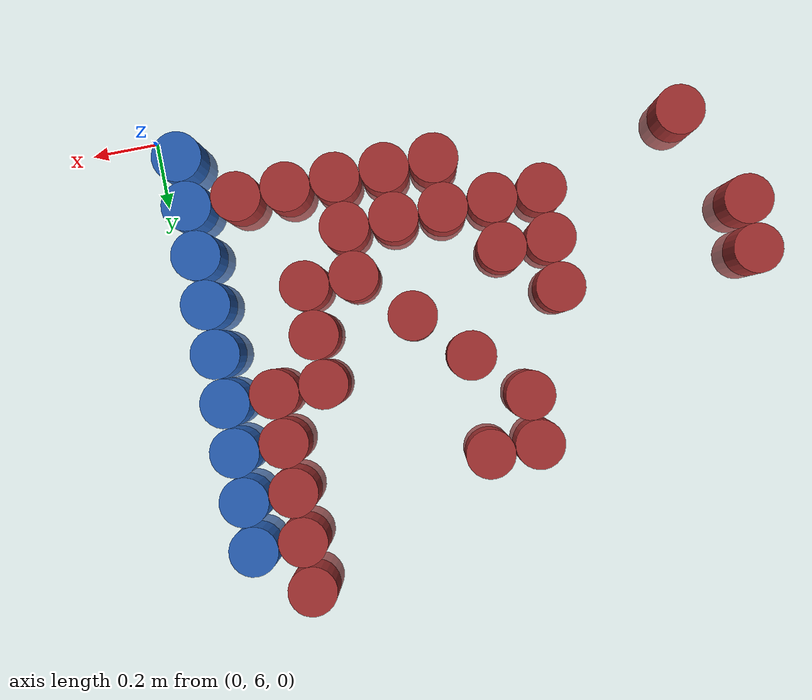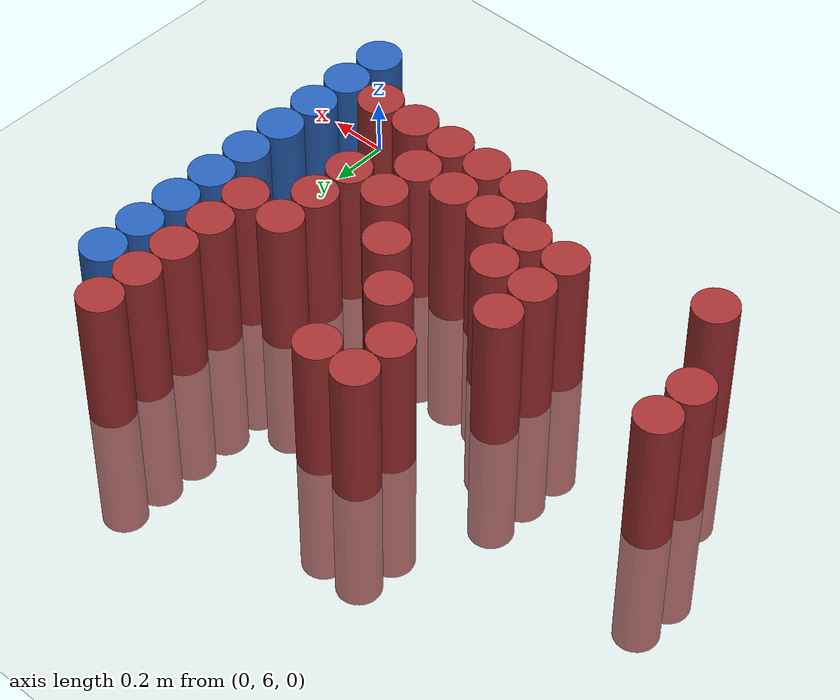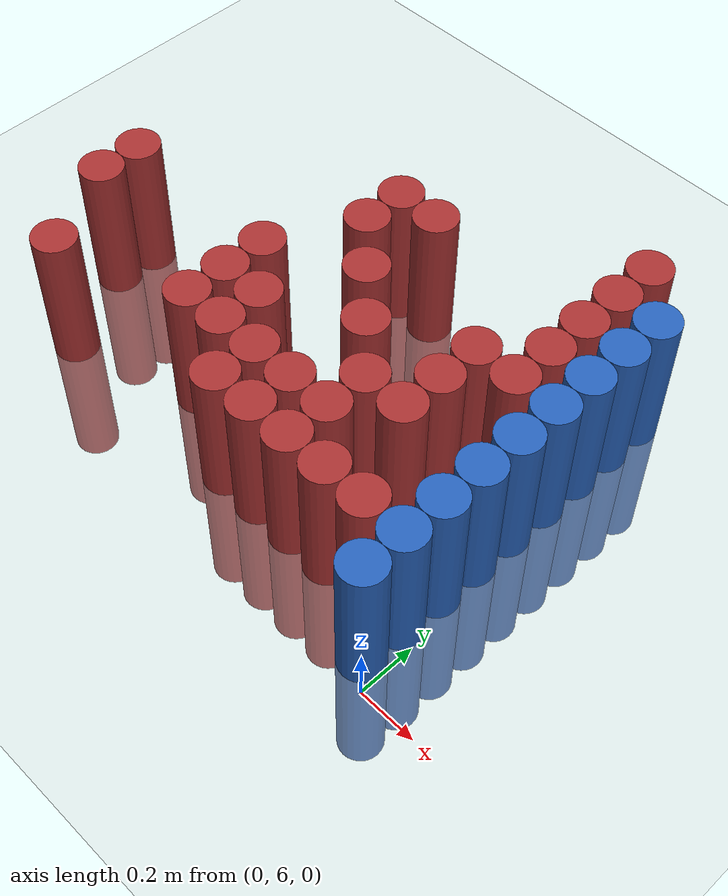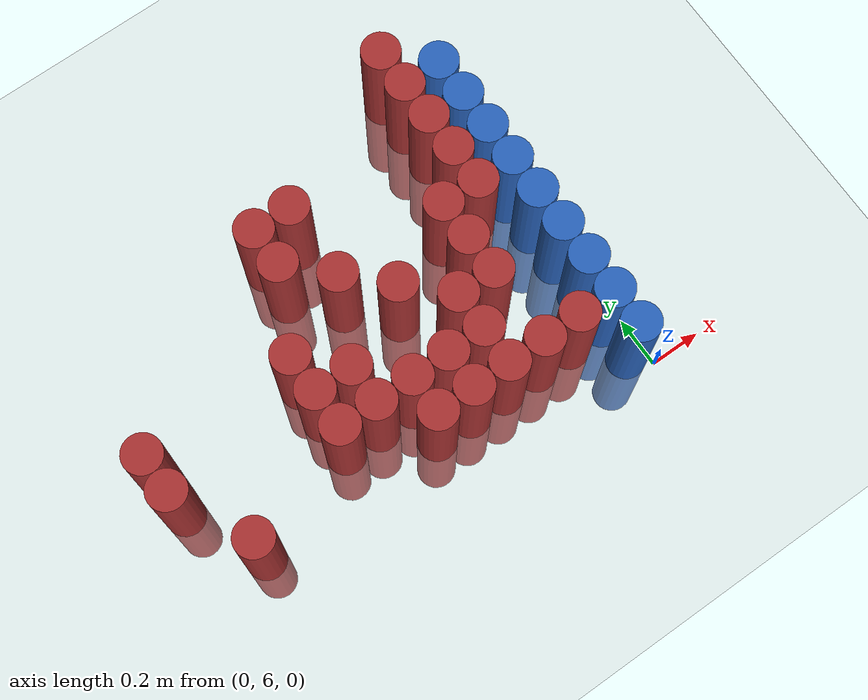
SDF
<sdf version="1.6">
 <world name="default">
  <model name="ground_plane">
   <static>1</static>
   <link name="link">
    <collision name="collision">
     <geometry><plane><normal>0 0 1</normal><size>100 100</size></plane></geometry>
     <surface><friction><ode><mu>100</mu><mu2>50</mu2></ode></friction></surface>
    </collision>
    <visual name="visual">
     <cast_shadows>0</cast_shadows>
     <geometry><plane><normal>0 0 1</normal><size>100 100</size></plane></geometry>
     <material>
      <script><uri>file://media/materials/scripts/gazebo.material</uri><name>Gazebo/Grey</name></script>
     </material>
    </visual>
   </link>
  </model>
  <model name="unit_cylinder_200">
   <static>1</static>
   <pose>-1.725000 6.525000 0.000000 0.000000 0.000000 0.000000</pose>
   <link name="link">
    <inertial>
     <mass>1</mass>
     <inertia><ixx>0.145833</ixx><ixy>0</ixy><ixz>0</ixz><iyy>0.145833</iyy><iyz>0</iyz><izz>0.125</izz></inertia>
    </inertial>
    <collision name="collision">
     <geometry><cylinder><radius>0.075000</radius><length>1</length></cylinder></geometry>
    </collision>
    <visual name="visual">
     <geometry><cylinder><radius>0.075000</radius><length>1</length></cylinder></geometry>
     <material>
      <ambient>0.648000 0.192000 0.192000 1</ambient>
      <diffuse>0.648000 0.192000 0.192000 1</diffuse>
     </material>
     <material>
      <script><name>Gazebo/Grey</name><uri>file://media/materials/scripts/gazebo.material</uri></script>
     </material>
    </visual>
    <sensor name="sensor_contact" type="contact"><contact><collision>collision</collision></contact></sensor>
   </link>
   <plugin filename="gz-sim-touchplugin-system" name="gz::sim::systems::TouchPlugin">
    <target>robot</target>
    <namespace>robot</namespace>
    <time>0.001</time>
    <enabled>true</enabled>
   </plugin>
  </model>
  <model name="unit_cylinder_201">
   <static>1</static>
   <pose>-1.725000 6.675000 0.000000 0.000000 0.000000 0.000000</pose>
   <link name="link">
    <inertial>
     <mass>1</mass>
     <inertia><ixx>0.145833</ixx><ixy>0</ixy><ixz>0</ixz><iyy>0.145833</iyy><iyz>0</iyz><izz>0.125</izz></inertia>
    </inertial>
    <collision name="collision">
     <geometry><cylinder><radius>0.075000</radius><length>1</length></cylinder></geometry>
    </collision>
    <visual name="visual">
     <geometry><cylinder><radius>0.075000</radius><length>1</length></cylinder></geometry>
     <material>
      <ambient>0.648000 0.192000 0.192000 1</ambient>
      <diffuse>0.648000 0.192000 0.192000 1</diffuse>
     </material>
     <material>
      <script><name>Gazebo/Grey</name><uri>file://media/materials/scripts/gazebo.material</uri></script>
     </material>
    </visual>
    <sensor name="sensor_contact" type="contact"><contact><collision>collision</collision></contact></sensor>
   </link>
   <plugin filename="gz-sim-touchplugin-system" name="gz::sim::systems::TouchPlugin">
    <target>robot</target>
    <namespace>robot</namespace>
    <time>0.001</time>
    <enabled>true</enabled>
   </plugin>
  </model>
  <model name="unit_cylinder_206">
   <static>1</static>
   <pose>-1.575000 6.225000 0.000000 0.000000 0.000000 0.000000</pose>
   <link name="link">
    <inertial>
     <mass>1</mass>
     <inertia><ixx>0.145833</ixx><ixy>0</ixy><ixz>0</ixz><iyy>0.145833</iyy><iyz>0</iyz><izz>0.125</izz></inertia>
    </inertial>
    <collision name="collision">
     <geometry><cylinder><radius>0.075000</radius><length>1</length></cylinder></geometry>
    </collision>
    <visual name="visual">
     <geometry><cylinder><radius>0.075000</radius><length>1</length></cylinder></geometry>
     <material>
      <ambient>0.648000 0.192000 0.192000 1</ambient>
      <diffuse>0.648000 0.192000 0.192000 1</diffuse>
     </material>
     <material>
      <script><name>Gazebo/Grey</name><uri>file://media/materials/scripts/gazebo.material</uri></script>
     </material>
    </visual>
    <sensor name="sensor_contact" type="contact"><contact><collision>collision</collision></contact></sensor>
   </link>
   <plugin filename="gz-sim-touchplugin-system" name="gz::sim::systems::TouchPlugin">
    <target>robot</target>
    <namespace>robot</namespace>
    <time>0.001</time>
    <enabled>true</enabled>
   </plugin>
  </model>
  <model name="unit_cylinder_220">
   <static>1</static>
   <pose>-1.125000 6.375000 0.000000 0.000000 0.000000 0.000000</pose>
   <link name="link">
    <inertial>
     <mass>1</mass>
     <inertia><ixx>0.145833</ixx><ixy>0</ixy><ixz>0</ixz><iyy>0.145833</iyy><iyz>0</iyz><izz>0.125</izz></inertia>
    </inertial>
    <collision name="collision">
     <geometry><cylinder><radius>0.075000</radius><length>1</length></cylinder></geometry>
    </collision>
    <visual name="visual">
     <geometry><cylinder><radius>0.075000</radius><length>1</length></cylinder></geometry>
     <material>
      <ambient>0.648000 0.192000 0.192000 1</ambient>
      <diffuse>0.648000 0.192000 0.192000 1</diffuse>
     </material>
     <material>
      <script><name>Gazebo/Grey</name><uri>file://media/materials/scripts/gazebo.material</uri></script>
     </material>
    </visual>
    <sensor name="sensor_contact" type="contact"><contact><collision>collision</collision></contact></sensor>
   </link>
   <plugin filename="gz-sim-touchplugin-system" name="gz::sim::systems::TouchPlugin">
    <target>robot</target>
    <namespace>robot</namespace>
    <time>0.001</time>
    <enabled>true</enabled>
   </plugin>
  </model>
  <model name="unit_cylinder_221">
   <static>1</static>
   <pose>-1.125000 6.525000 0.000000 0.000000 0.000000 0.000000</pose>
   <link name="link">
    <inertial>
     <mass>1</mass>
     <inertia><ixx>0.145833</ixx><ixy>0</ixy><ixz>0</ixz><iyy>0.145833</iyy><iyz>0</iyz><izz>0.125</izz></inertia>
    </inertial>
    <collision name="collision">
     <geometry><cylinder><radius>0.075000</radius><length>1</length></cylinder></geometry>
    </collision>
    <visual name="visual">
     <geometry><cylinder><radius>0.075000</radius><length>1</length></cylinder></geometry>
     <material>
      <ambient>0.648000 0.192000 0.192000 1</ambient>
      <diffuse>0.648000 0.192000 0.192000 1</diffuse>
     </material>
     <material>
      <script><name>Gazebo/Grey</name><uri>file://media/materials/scripts/gazebo.material</uri></script>
     </material>
    </visual>
    <sensor name="sensor_contact" type="contact"><contact><collision>collision</collision></contact></sensor>
   </link>
   <plugin filename="gz-sim-touchplugin-system" name="gz::sim::systems::TouchPlugin">
    <target>robot</target>
    <namespace>robot</namespace>
    <time>0.001</time>
    <enabled>true</enabled>
   </plugin>
  </model>
  <model name="unit_cylinder_222">
   <static>1</static>
   <pose>-1.125000 6.675000 0.000000 0.000000 0.000000 0.000000</pose>
   <link name="link">
    <inertial>
     <mass>1</mass>
     <inertia><ixx>0.145833</ixx><ixy>0</ixy><ixz>0</ixz><iyy>0.145833</iyy><iyz>0</iyz><izz>0.125</izz></inertia>
    </inertial>
    <collision name="collision">
     <geometry><cylinder><radius>0.075000</radius><length>1</length></cylinder></geometry>
    </collision>
    <visual name="visual">
     <geometry><cylinder><radius>0.075000</radius><length>1</length></cylinder></geometry>
     <material>
      <ambient>0.648000 0.192000 0.192000 1</ambient>
      <diffuse>0.648000 0.192000 0.192000 1</diffuse>
     </material>
     <material>
      <script><name>Gazebo/Grey</name><uri>file://media/materials/scripts/gazebo.material</uri></script>
     </material>
    </visual>
    <sensor name="sensor_contact" type="contact"><contact><collision>collision</collision></contact></sensor>
   </link>
   <plugin filename="gz-sim-touchplugin-system" name="gz::sim::systems::TouchPlugin">
    <target>robot</target>
    <namespace>robot</namespace>
    <time>0.001</time>
    <enabled>true</enabled>
   </plugin>
  </model>
  <model name="unit_cylinder_229">
   <static>1</static>
   <pose>-0.975000 6.375000 0.000000 0.000000 0.000000 0.000000</pose>
   <link name="link">
    <inertial>
     <mass>1</mass>
     <inertia><ixx>0.145833</ixx><ixy>0</ixy><ixz>0</ixz><iyy>0.145833</iyy><iyz>0</iyz><izz>0.125</izz></inertia>
    </inertial>
    <collision name="collision">
     <geometry><cylinder><radius>0.075000</radius><length>1</length></cylinder></geometry>
    </collision>
    <visual name="visual">
     <geometry><cylinder><radius>0.075000</radius><length>1</length></cylinder></geometry>
     <material>
      <ambient>0.648000 0.192000 0.192000 1</ambient>
      <diffuse>0.648000 0.192000 0.192000 1</diffuse>
     </material>
     <material>
      <script><name>Gazebo/Grey</name><uri>file://media/materials/scripts/gazebo.material</uri></script>
     </material>
    </visual>
    <sensor name="sensor_contact" type="contact"><contact><collision>collision</collision></contact></sensor>
   </link>
   <plugin filename="gz-sim-touchplugin-system" name="gz::sim::systems::TouchPlugin">
    <target>robot</target>
    <namespace>robot</namespace>
    <time>0.001</time>
    <enabled>true</enabled>
   </plugin>
  </model>
  <model name="unit_cylinder_230">
   <static>1</static>
   <pose>-0.975000 6.525000 0.000000 0.000000 0.000000 0.000000</pose>
   <link name="link">
    <inertial>
     <mass>1</mass>
     <inertia><ixx>0.145833</ixx><ixy>0</ixy><ixz>0</ixz><iyy>0.145833</iyy><iyz>0</iyz><izz>0.125</izz></inertia>
    </inertial>
    <collision name="collision">
     <geometry><cylinder><radius>0.075000</radius><length>1</length></cylinder></geometry>
    </collision>
    <visual name="visual">
     <geometry><cylinder><radius>0.075000</radius><length>1</length></cylinder></geometry>
     <material>
      <ambient>0.648000 0.192000 0.192000 1</ambient>
      <diffuse>0.648000 0.192000 0.192000 1</diffuse>
     </material>
     <material>
      <script><name>Gazebo/Grey</name><uri>file://media/materials/scripts/gazebo.material</uri></script>
     </material>
    </visual>
    <sensor name="sensor_contact" type="contact"><contact><collision>collision</collision></contact></sensor>
   </link>
   <plugin filename="gz-sim-touchplugin-system" name="gz::sim::systems::TouchPlugin">
    <target>robot</target>
    <namespace>robot</namespace>
    <time>0.001</time>
    <enabled>true</enabled>
   </plugin>
  </model>
  <model name="unit_cylinder_231">
   <static>1</static>
   <pose>-0.975000 6.975000 0.000000 0.000000 0.000000 0.000000</pose>
   <link name="link">
    <inertial>
     <mass>1</mass>
     <inertia><ixx>0.145833</ixx><ixy>0</ixy><ixz>0</ixz><iyy>0.145833</iyy><iyz>0</iyz><izz>0.125</izz></inertia>
    </inertial>
    <collision name="collision">
     <geometry><cylinder><radius>0.075000</radius><length>1</length></cylinder></geometry>
    </collision>
    <visual name="visual">
     <geometry><cylinder><radius>0.075000</radius><length>1</length></cylinder></geometry>
     <material>
      <ambient>0.648000 0.192000 0.192000 1</ambient>
      <diffuse>0.648000 0.192000 0.192000 1</diffuse>
     </material>
     <material>
      <script><name>Gazebo/Grey</name><uri>file://media/materials/scripts/gazebo.material</uri></script>
     </material>
    </visual>
    <sensor name="sensor_contact" type="contact"><contact><collision>collision</collision></contact></sensor>
   </link>
   <plugin filename="gz-sim-touchplugin-system" name="gz::sim::systems::TouchPlugin">
    <target>robot</target>
    <namespace>robot</namespace>
    <time>0.001</time>
    <enabled>true</enabled>
   </plugin>
  </model>
  <model name="unit_cylinder_232">
   <static>1</static>
   <pose>-0.975000 7.125000 0.000000 0.000000 0.000000 0.000000</pose>
   <link name="link">
    <inertial>
     <mass>1</mass>
     <inertia><ixx>0.145833</ixx><ixy>0</ixy><ixz>0</ixz><iyy>0.145833</iyy><iyz>0</iyz><izz>0.125</izz></inertia>
    </inertial>
    <collision name="collision">
     <geometry><cylinder><radius>0.075000</radius><length>1</length></cylinder></geometry>
    </collision>
    <visual name="visual">
     <geometry><cylinder><radius>0.075000</radius><length>1</length></cylinder></geometry>
     <material>
      <ambient>0.648000 0.192000 0.192000 1</ambient>
      <diffuse>0.648000 0.192000 0.192000 1</diffuse>
     </material>
     <material>
      <script><name>Gazebo/Grey</name><uri>file://media/materials/scripts/gazebo.material</uri></script>
     </material>
    </visual>
    <sensor name="sensor_contact" type="contact"><contact><collision>collision</collision></contact></sensor>
   </link>
   <plugin filename="gz-sim-touchplugin-system" name="gz::sim::systems::TouchPlugin">
    <target>robot</target>
    <namespace>robot</namespace>
    <time>0.001</time>
    <enabled>true</enabled>
   </plugin>
  </model>
  <model name="unit_cylinder_237">
   <static>1</static>
   <pose>-0.825000 6.225000 0.000000 0.000000 0.000000 0.000000</pose>
   <link name="link">
    <inertial>
     <mass>1</mass>
     <inertia><ixx>0.145833</ixx><ixy>0</ixy><ixz>0</ixz><iyy>0.145833</iyy><iyz>0</iyz><izz>0.125</izz></inertia>
    </inertial>
    <collision name="collision">
     <geometry><cylinder><radius>0.075000</radius><length>1</length></cylinder></geometry>
    </collision>
    <visual name="visual">
     <geometry><cylinder><radius>0.075000</radius><length>1</length></cylinder></geometry>
     <material>
      <ambient>0.648000 0.192000 0.192000 1</ambient>
      <diffuse>0.648000 0.192000 0.192000 1</diffuse>
     </material>
     <material>
      <script><name>Gazebo/Grey</name><uri>file://media/materials/scripts/gazebo.material</uri></script>
     </material>
    </visual>
    <sensor name="sensor_contact" type="contact"><contact><collision>collision</collision></contact></sensor>
   </link>
   <plugin filename="gz-sim-touchplugin-system" name="gz::sim::systems::TouchPlugin">
    <target>robot</target>
    <namespace>robot</namespace>
    <time>0.001</time>
    <enabled>true</enabled>
   </plugin>
  </model>
  <model name="unit_cylinder_238">
   <static>1</static>
   <pose>-0.825000 6.375000 0.000000 0.000000 0.000000 0.000000</pose>
   <link name="link">
    <inertial>
     <mass>1</mass>
     <inertia><ixx>0.145833</ixx><ixy>0</ixy><ixz>0</ixz><iyy>0.145833</iyy><iyz>0</iyz><izz>0.125</izz></inertia>
    </inertial>
    <collision name="collision">
     <geometry><cylinder><radius>0.075000</radius><length>1</length></cylinder></geometry>
    </collision>
    <visual name="visual">
     <geometry><cylinder><radius>0.075000</radius><length>1</length></cylinder></geometry>
     <material>
      <ambient>0.648000 0.192000 0.192000 1</ambient>
      <diffuse>0.648000 0.192000 0.192000 1</diffuse>
     </material>
     <material>
      <script><name>Gazebo/Grey</name><uri>file://media/materials/scripts/gazebo.material</uri></script>
     </material>
    </visual>
    <sensor name="sensor_contact" type="contact"><contact><collision>collision</collision></contact></sensor>
   </link>
   <plugin filename="gz-sim-touchplugin-system" name="gz::sim::systems::TouchPlugin">
    <target>robot</target>
    <namespace>robot</namespace>
    <time>0.001</time>
    <enabled>true</enabled>
   </plugin>
  </model>
  <model name="unit_cylinder_239">
   <static>1</static>
   <pose>-0.825000 6.825000 0.000000 0.000000 0.000000 0.000000</pose>
   <link name="link">
    <inertial>
     <mass>1</mass>
     <inertia><ixx>0.145833</ixx><ixy>0</ixy><ixz>0</ixz><iyy>0.145833</iyy><iyz>0</iyz><izz>0.125</izz></inertia>
    </inertial>
    <collision name="collision">
     <geometry><cylinder><radius>0.075000</radius><length>1</length></cylinder></geometry>
    </collision>
    <visual name="visual">
     <geometry><cylinder><radius>0.075000</radius><length>1</length></cylinder></geometry>
     <material>
      <ambient>0.648000 0.192000 0.192000 1</ambient>
      <diffuse>0.648000 0.192000 0.192000 1</diffuse>
     </material>
     <material>
      <script><name>Gazebo/Grey</name><uri>file://media/materials/scripts/gazebo.material</uri></script>
     </material>
    </visual>
    <sensor name="sensor_contact" type="contact"><contact><collision>collision</collision></contact></sensor>
   </link>
   <plugin filename="gz-sim-touchplugin-system" name="gz::sim::systems::TouchPlugin">
    <target>robot</target>
    <namespace>robot</namespace>
    <time>0.001</time>
    <enabled>true</enabled>
   </plugin>
  </model>
  <model name="unit_cylinder_240">
   <static>1</static>
   <pose>-0.825000 7.125000 0.000000 0.000000 0.000000 0.000000</pose>
   <link name="link">
    <inertial>
     <mass>1</mass>
     <inertia><ixx>0.145833</ixx><ixy>0</ixy><ixz>0</ixz><iyy>0.145833</iyy><iyz>0</iyz><izz>0.125</izz></inertia>
    </inertial>
    <collision name="collision">
     <geometry><cylinder><radius>0.075000</radius><length>1</length></cylinder></geometry>
    </collision>
    <visual name="visual">
     <geometry><cylinder><radius>0.075000</radius><length>1</length></cylinder></geometry>
     <material>
      <ambient>0.648000 0.192000 0.192000 1</ambient>
      <diffuse>0.648000 0.192000 0.192000 1</diffuse>
     </material>
     <material>
      <script><name>Gazebo/Grey</name><uri>file://media/materials/scripts/gazebo.material</uri></script>
     </material>
    </visual>
    <sensor name="sensor_contact" type="contact"><contact><collision>collision</collision></contact></sensor>
   </link>
   <plugin filename="gz-sim-touchplugin-system" name="gz::sim::systems::TouchPlugin">
    <target>robot</target>
    <namespace>robot</namespace>
    <time>0.001</time>
    <enabled>true</enabled>
   </plugin>
  </model>
  <model name="unit_cylinder_247">
   <static>1</static>
   <pose>-0.675000 6.225000 0.000000 0.000000 0.000000 0.000000</pose>
   <link name="link">
    <inertial>
     <mass>1</mass>
     <inertia><ixx>0.145833</ixx><ixy>0</ixy><ixz>0</ixz><iyy>0.145833</iyy><iyz>0</iyz><izz>0.125</izz></inertia>
    </inertial>
    <collision name="collision">
     <geometry><cylinder><radius>0.075000</radius><length>1</length></cylinder></geometry>
    </collision>
    <visual name="visual">
     <geometry><cylinder><radius>0.075000</radius><length>1</length></cylinder></geometry>
     <material>
      <ambient>0.648000 0.192000 0.192000 1</ambient>
      <diffuse>0.648000 0.192000 0.192000 1</diffuse>
     </material>
     <material>
      <script><name>Gazebo/Grey</name><uri>file://media/materials/scripts/gazebo.material</uri></script>
     </material>
    </visual>
    <sensor name="sensor_contact" type="contact"><contact><collision>collision</collision></contact></sensor>
   </link>
   <plugin filename="gz-sim-touchplugin-system" name="gz::sim::systems::TouchPlugin">
    <target>robot</target>
    <namespace>robot</namespace>
    <time>0.001</time>
    <enabled>true</enabled>
   </plugin>
  </model>
  <model name="unit_cylinder_248">
   <static>1</static>
   <pose>-0.675000 6.375000 0.000000 0.000000 0.000000 0.000000</pose>
   <link name="link">
    <inertial>
     <mass>1</mass>
     <inertia><ixx>0.145833</ixx><ixy>0</ixy><ixz>0</ixz><iyy>0.145833</iyy><iyz>0</iyz><izz>0.125</izz></inertia>
    </inertial>
    <collision name="collision">
     <geometry><cylinder><radius>0.075000</radius><length>1</length></cylinder></geometry>
    </collision>
    <visual name="visual">
     <geometry><cylinder><radius>0.075000</radius><length>1</length></cylinder></geometry>
     <material>
      <ambient>0.648000 0.192000 0.192000 1</ambient>
      <diffuse>0.648000 0.192000 0.192000 1</diffuse>
     </material>
     <material>
      <script><name>Gazebo/Grey</name><uri>file://media/materials/scripts/gazebo.material</uri></script>
     </material>
    </visual>
    <sensor name="sensor_contact" type="contact"><contact><collision>collision</collision></contact></sensor>
   </link>
   <plugin filename="gz-sim-touchplugin-system" name="gz::sim::systems::TouchPlugin">
    <target>robot</target>
    <namespace>robot</namespace>
    <time>0.001</time>
    <enabled>true</enabled>
   </plugin>
  </model>
  <model name="unit_cylinder_249">
   <static>1</static>
   <pose>-0.675000 6.675000 0.000000 0.000000 0.000000 0.000000</pose>
   <link name="link">
    <inertial>
     <mass>1</mass>
     <inertia><ixx>0.145833</ixx><ixy>0</ixy><ixz>0</ixz><iyy>0.145833</iyy><iyz>0</iyz><izz>0.125</izz></inertia>
    </inertial>
    <collision name="collision">
     <geometry><cylinder><radius>0.075000</radius><length>1</length></cylinder></geometry>
    </collision>
    <visual name="visual">
     <geometry><cylinder><radius>0.075000</radius><length>1</length></cylinder></geometry>
     <material>
      <ambient>0.648000 0.192000 0.192000 1</ambient>
      <diffuse>0.648000 0.192000 0.192000 1</diffuse>
     </material>
     <material>
      <script><name>Gazebo/Grey</name><uri>file://media/materials/scripts/gazebo.material</uri></script>
     </material>
    </visual>
    <sensor name="sensor_contact" type="contact"><contact><collision>collision</collision></contact></sensor>
   </link>
   <plugin filename="gz-sim-touchplugin-system" name="gz::sim::systems::TouchPlugin">
    <target>robot</target>
    <namespace>robot</namespace>
    <time>0.001</time>
    <enabled>true</enabled>
   </plugin>
  </model>
  <model name="unit_cylinder_252">
   <static>1</static>
   <pose>-0.525000 6.225000 0.000000 0.000000 0.000000 0.000000</pose>
   <link name="link">
    <inertial>
     <mass>1</mass>
     <inertia><ixx>0.145833</ixx><ixy>0</ixy><ixz>0</ixz><iyy>0.145833</iyy><iyz>0</iyz><izz>0.125</izz></inertia>
    </inertial>
    <collision name="collision">
     <geometry><cylinder><radius>0.075000</radius><length>1</length></cylinder></geometry>
    </collision>
    <visual name="visual">
     <geometry><cylinder><radius>0.075000</radius><length>1</length></cylinder></geometry>
     <material>
      <ambient>0.648000 0.192000 0.192000 1</ambient>
      <diffuse>0.648000 0.192000 0.192000 1</diffuse>
     </material>
     <material>
      <script><name>Gazebo/Grey</name><uri>file://media/materials/scripts/gazebo.material</uri></script>
     </material>
    </visual>
    <sensor name="sensor_contact" type="contact"><contact><collision>collision</collision></contact></sensor>
   </link>
   <plugin filename="gz-sim-touchplugin-system" name="gz::sim::systems::TouchPlugin">
    <target>robot</target>
    <namespace>robot</namespace>
    <time>0.001</time>
    <enabled>true</enabled>
   </plugin>
  </model>
  <model name="unit_cylinder_253">
   <static>1</static>
   <pose>-0.525000 6.375000 0.000000 0.000000 0.000000 0.000000</pose>
   <link name="link">
    <inertial>
     <mass>1</mass>
     <inertia><ixx>0.145833</ixx><ixy>0</ixy><ixz>0</ixz><iyy>0.145833</iyy><iyz>0</iyz><izz>0.125</izz></inertia>
    </inertial>
    <collision name="collision">
     <geometry><cylinder><radius>0.075000</radius><length>1</length></cylinder></geometry>
    </collision>
    <visual name="visual">
     <geometry><cylinder><radius>0.075000</radius><length>1</length></cylinder></geometry>
     <material>
      <ambient>0.648000 0.192000 0.192000 1</ambient>
      <diffuse>0.648000 0.192000 0.192000 1</diffuse>
     </material>
     <material>
      <script><name>Gazebo/Grey</name><uri>file://media/materials/scripts/gazebo.material</uri></script>
     </material>
    </visual>
    <sensor name="sensor_contact" type="contact"><contact><collision>collision</collision></contact></sensor>
   </link>
   <plugin filename="gz-sim-touchplugin-system" name="gz::sim::systems::TouchPlugin">
    <target>robot</target>
    <namespace>robot</namespace>
    <time>0.001</time>
    <enabled>true</enabled>
   </plugin>
  </model>
  <model name="unit_cylinder_254">
   <static>1</static>
   <pose>-0.525000 6.525000 0.000000 0.000000 0.000000 0.000000</pose>
   <link name="link">
    <inertial>
     <mass>1</mass>
     <inertia><ixx>0.145833</ixx><ixy>0</ixy><ixz>0</ixz><iyy>0.145833</iyy><iyz>0</iyz><izz>0.125</izz></inertia>
    </inertial>
    <collision name="collision">
     <geometry><cylinder><radius>0.075000</radius><length>1</length></cylinder></geometry>
    </collision>
    <visual name="visual">
     <geometry><cylinder><radius>0.075000</radius><length>1</length></cylinder></geometry>
     <material>
      <ambient>0.648000 0.192000 0.192000 1</ambient>
      <diffuse>0.648000 0.192000 0.192000 1</diffuse>
     </material>
     <material>
      <script><name>Gazebo/Grey</name><uri>file://media/materials/scripts/gazebo.material</uri></script>
     </material>
    </visual>
    <sensor name="sensor_contact" type="contact"><contact><collision>collision</collision></contact></sensor>
   </link>
   <plugin filename="gz-sim-touchplugin-system" name="gz::sim::systems::TouchPlugin">
    <target>robot</target>
    <namespace>robot</namespace>
    <time>0.001</time>
    <enabled>true</enabled>
   </plugin>
  </model>
  <model name="unit_cylinder_259">
   <static>1</static>
   <pose>-0.375000 6.225000 0.000000 0.000000 0.000000 0.000000</pose>
   <link name="link">
    <inertial>
     <mass>1</mass>
     <inertia><ixx>0.145833</ixx><ixy>0</ixy><ixz>0</ixz><iyy>0.145833</iyy><iyz>0</iyz><izz>0.125</izz></inertia>
    </inertial>
    <collision name="collision">
     <geometry><cylinder><radius>0.075000</radius><length>1</length></cylinder></geometry>
    </collision>
    <visual name="visual">
     <geometry><cylinder><radius>0.075000</radius><length>1</length></cylinder></geometry>
     <material>
      <ambient>0.648000 0.192000 0.192000 1</ambient>
      <diffuse>0.648000 0.192000 0.192000 1</diffuse>
     </material>
     <material>
      <script><name>Gazebo/Grey</name><uri>file://media/materials/scripts/gazebo.material</uri></script>
     </material>
    </visual>
    <sensor name="sensor_contact" type="contact"><contact><collision>collision</collision></contact></sensor>
   </link>
   <plugin filename="gz-sim-touchplugin-system" name="gz::sim::systems::TouchPlugin">
    <target>robot</target>
    <namespace>robot</namespace>
    <time>0.001</time>
    <enabled>true</enabled>
   </plugin>
  </model>
  <model name="unit_cylinder_260">
   <static>1</static>
   <pose>-0.375000 6.525000 0.000000 0.000000 0.000000 0.000000</pose>
   <link name="link">
    <inertial>
     <mass>1</mass>
     <inertia><ixx>0.145833</ixx><ixy>0</ixy><ixz>0</ixz><iyy>0.145833</iyy><iyz>0</iyz><izz>0.125</izz></inertia>
    </inertial>
    <collision name="collision">
     <geometry><cylinder><radius>0.075000</radius><length>1</length></cylinder></geometry>
    </collision>
    <visual name="visual">
     <geometry><cylinder><radius>0.075000</radius><length>1</length></cylinder></geometry>
     <material>
      <ambient>0.648000 0.192000 0.192000 1</ambient>
      <diffuse>0.648000 0.192000 0.192000 1</diffuse>
     </material>
     <material>
      <script><name>Gazebo/Grey</name><uri>file://media/materials/scripts/gazebo.material</uri></script>
     </material>
    </visual>
    <sensor name="sensor_contact" type="contact"><contact><collision>collision</collision></contact></sensor>
   </link>
   <plugin filename="gz-sim-touchplugin-system" name="gz::sim::systems::TouchPlugin">
    <target>robot</target>
    <namespace>robot</namespace>
    <time>0.001</time>
    <enabled>true</enabled>
   </plugin>
  </model>
  <model name="unit_cylinder_261">
   <static>1</static>
   <pose>-0.375000 6.675000 0.000000 0.000000 0.000000 0.000000</pose>
   <link name="link">
    <inertial>
     <mass>1</mass>
     <inertia><ixx>0.145833</ixx><ixy>0</ixy><ixz>0</ixz><iyy>0.145833</iyy><iyz>0</iyz><izz>0.125</izz></inertia>
    </inertial>
    <collision name="collision">
     <geometry><cylinder><radius>0.075000</radius><length>1</length></cylinder></geometry>
    </collision>
    <visual name="visual">
     <geometry><cylinder><radius>0.075000</radius><length>1</length></cylinder></geometry>
     <material>
      <ambient>0.648000 0.192000 0.192000 1</ambient>
      <diffuse>0.648000 0.192000 0.192000 1</diffuse>
     </material>
     <material>
      <script><name>Gazebo/Grey</name><uri>file://media/materials/scripts/gazebo.material</uri></script>
     </material>
    </visual>
    <sensor name="sensor_contact" type="contact"><contact><collision>collision</collision></contact></sensor>
   </link>
   <plugin filename="gz-sim-touchplugin-system" name="gz::sim::systems::TouchPlugin">
    <target>robot</target>
    <namespace>robot</namespace>
    <time>0.001</time>
    <enabled>true</enabled>
   </plugin>
  </model>
  <model name="unit_cylinder_262">
   <static>1</static>
   <pose>-0.375000 6.825000 0.000000 0.000000 0.000000 0.000000</pose>
   <link name="link">
    <inertial>
     <mass>1</mass>
     <inertia><ixx>0.145833</ixx><ixy>0</ixy><ixz>0</ixz><iyy>0.145833</iyy><iyz>0</iyz><izz>0.125</izz></inertia>
    </inertial>
    <collision name="collision">
     <geometry><cylinder><radius>0.075000</radius><length>1</length></cylinder></geometry>
    </collision>
    <visual name="visual">
     <geometry><cylinder><radius>0.075000</radius><length>1</length></cylinder></geometry>
     <material>
      <ambient>0.648000 0.192000 0.192000 1</ambient>
      <diffuse>0.648000 0.192000 0.192000 1</diffuse>
     </material>
     <material>
      <script><name>Gazebo/Grey</name><uri>file://media/materials/scripts/gazebo.material</uri></script>
     </material>
    </visual>
    <sensor name="sensor_contact" type="contact"><contact><collision>collision</collision></contact></sensor>
   </link>
   <plugin filename="gz-sim-touchplugin-system" name="gz::sim::systems::TouchPlugin">
    <target>robot</target>
    <namespace>robot</namespace>
    <time>0.001</time>
    <enabled>true</enabled>
   </plugin>
  </model>
  <model name="unit_cylinder_271">
   <static>1</static>
   <pose>-0.225000 6.225000 0.000000 0.000000 0.000000 0.000000</pose>
   <link name="link">
    <inertial>
     <mass>1</mass>
     <inertia><ixx>0.145833</ixx><ixy>0</ixy><ixz>0</ixz><iyy>0.145833</iyy><iyz>0</iyz><izz>0.125</izz></inertia>
    </inertial>
    <collision name="collision">
     <geometry><cylinder><radius>0.075000</radius><length>1</length></cylinder></geometry>
    </collision>
    <visual name="visual">
     <geometry><cylinder><radius>0.075000</radius><length>1</length></cylinder></geometry>
     <material>
      <ambient>0.648000 0.192000 0.192000 1</ambient>
      <diffuse>0.648000 0.192000 0.192000 1</diffuse>
     </material>
     <material>
      <script><name>Gazebo/Grey</name><uri>file://media/materials/scripts/gazebo.material</uri></script>
     </material>
    </visual>
    <sensor name="sensor_contact" type="contact"><contact><collision>collision</collision></contact></sensor>
   </link>
   <plugin filename="gz-sim-touchplugin-system" name="gz::sim::systems::TouchPlugin">
    <target>robot</target>
    <namespace>robot</namespace>
    <time>0.001</time>
    <enabled>true</enabled>
   </plugin>
  </model>
  <model name="unit_cylinder_272">
   <static>1</static>
   <pose>-0.225000 6.825000 0.000000 0.000000 0.000000 0.000000</pose>
   <link name="link">
    <inertial>
     <mass>1</mass>
     <inertia><ixx>0.145833</ixx><ixy>0</ixy><ixz>0</ixz><iyy>0.145833</iyy><iyz>0</iyz><izz>0.125</izz></inertia>
    </inertial>
    <collision name="collision">
     <geometry><cylinder><radius>0.075000</radius><length>1</length></cylinder></geometry>
    </collision>
    <visual name="visual">
     <geometry><cylinder><radius>0.075000</radius><length>1</length></cylinder></geometry>
     <material>
      <ambient>0.648000 0.192000 0.192000 1</ambient>
      <diffuse>0.648000 0.192000 0.192000 1</diffuse>
     </material>
     <material>
      <script><name>Gazebo/Grey</name><uri>file://media/materials/scripts/gazebo.material</uri></script>
     </material>
    </visual>
    <sensor name="sensor_contact" type="contact"><contact><collision>collision</collision></contact></sensor>
   </link>
   <plugin filename="gz-sim-touchplugin-system" name="gz::sim::systems::TouchPlugin">
    <target>robot</target>
    <namespace>robot</namespace>
    <time>0.001</time>
    <enabled>true</enabled>
   </plugin>
  </model>
  <model name="unit_cylinder_273">
   <static>1</static>
   <pose>-0.225000 6.975000 0.000000 0.000000 0.000000 0.000000</pose>
   <link name="link">
    <inertial>
     <mass>1</mass>
     <inertia><ixx>0.145833</ixx><ixy>0</ixy><ixz>0</ixz><iyy>0.145833</iyy><iyz>0</iyz><izz>0.125</izz></inertia>
    </inertial>
    <collision name="collision">
     <geometry><cylinder><radius>0.075000</radius><length>1</length></cylinder></geometry>
    </collision>
    <visual name="visual">
     <geometry><cylinder><radius>0.075000</radius><length>1</length></cylinder></geometry>
     <material>
      <ambient>0.648000 0.192000 0.192000 1</ambient>
      <diffuse>0.648000 0.192000 0.192000 1</diffuse>
     </material>
     <material>
      <script><name>Gazebo/Grey</name><uri>file://media/materials/scripts/gazebo.material</uri></script>
     </material>
    </visual>
    <sensor name="sensor_contact" type="contact"><contact><collision>collision</collision></contact></sensor>
   </link>
   <plugin filename="gz-sim-touchplugin-system" name="gz::sim::systems::TouchPlugin">
    <target>robot</target>
    <namespace>robot</namespace>
    <time>0.001</time>
    <enabled>true</enabled>
   </plugin>
  </model>
  <model name="unit_cylinder_274">
   <static>1</static>
   <pose>-0.225000 7.125000 0.000000 0.000000 0.000000 0.000000</pose>
   <link name="link">
    <inertial>
     <mass>1</mass>
     <inertia><ixx>0.145833</ixx><ixy>0</ixy><ixz>0</ixz><iyy>0.145833</iyy><iyz>0</iyz><izz>0.125</izz></inertia>
    </inertial>
    <collision name="collision">
     <geometry><cylinder><radius>0.075000</radius><length>1</length></cylinder></geometry>
    </collision>
    <visual name="visual">
     <geometry><cylinder><radius>0.075000</radius><length>1</length></cylinder></geometry>
     <material>
      <ambient>0.648000 0.192000 0.192000 1</ambient>
      <diffuse>0.648000 0.192000 0.192000 1</diffuse>
     </material>
     <material>
      <script><name>Gazebo/Grey</name><uri>file://media/materials/scripts/gazebo.material</uri></script>
     </material>
    </visual>
    <sensor name="sensor_contact" type="contact"><contact><collision>collision</collision></contact></sensor>
   </link>
   <plugin filename="gz-sim-touchplugin-system" name="gz::sim::systems::TouchPlugin">
    <target>robot</target>
    <namespace>robot</namespace>
    <time>0.001</time>
    <enabled>true</enabled>
   </plugin>
  </model>
  <model name="unit_cylinder_275">
   <static>1</static>
   <pose>-0.225000 7.275000 0.000000 0.000000 0.000000 0.000000</pose>
   <link name="link">
    <inertial>
     <mass>1</mass>
     <inertia><ixx>0.145833</ixx><ixy>0</ixy><ixz>0</ixz><iyy>0.145833</iyy><iyz>0</iyz><izz>0.125</izz></inertia>
    </inertial>
    <collision name="collision">
     <geometry><cylinder><radius>0.075000</radius><length>1</length></cylinder></geometry>
    </collision>
    <visual name="visual">
     <geometry><cylinder><radius>0.075000</radius><length>1</length></cylinder></geometry>
     <material>
      <ambient>0.648000 0.192000 0.192000 1</ambient>
      <diffuse>0.648000 0.192000 0.192000 1</diffuse>
     </material>
     <material>
      <script><name>Gazebo/Grey</name><uri>file://media/materials/scripts/gazebo.material</uri></script>
     </material>
    </visual>
    <sensor name="sensor_contact" type="contact"><contact><collision>collision</collision></contact></sensor>
   </link>
   <plugin filename="gz-sim-touchplugin-system" name="gz::sim::systems::TouchPlugin">
    <target>robot</target>
    <namespace>robot</namespace>
    <time>0.001</time>
    <enabled>true</enabled>
   </plugin>
  </model>
  <model name="unit_cylinder_276">
   <static>1</static>
   <pose>-0.225000 7.425000 0.000000 0.000000 0.000000 0.000000</pose>
   <link name="link">
    <inertial>
     <mass>1</mass>
     <inertia><ixx>0.145833</ixx><ixy>0</ixy><ixz>0</ixz><iyy>0.145833</iyy><iyz>0</iyz><izz>0.125</izz></inertia>
    </inertial>
    <collision name="collision">
     <geometry><cylinder><radius>0.075000</radius><length>1</length></cylinder></geometry>
    </collision>
    <visual name="visual">
     <geometry><cylinder><radius>0.075000</radius><length>1</length></cylinder></geometry>
     <material>
      <ambient>0.648000 0.192000 0.192000 1</ambient>
      <diffuse>0.648000 0.192000 0.192000 1</diffuse>
     </material>
     <material>
      <script><name>Gazebo/Grey</name><uri>file://media/materials/scripts/gazebo.material</uri></script>
     </material>
    </visual>
    <sensor name="sensor_contact" type="contact"><contact><collision>collision</collision></contact></sensor>
   </link>
   <plugin filename="gz-sim-touchplugin-system" name="gz::sim::systems::TouchPlugin">
    <target>robot</target>
    <namespace>robot</namespace>
    <time>0.001</time>
    <enabled>true</enabled>
   </plugin>
  </model>
  <model name="unit_cylinder_291">
   <static>1</static>
   <pose>-0.075000 6.075000 0.000000 0.000000 0.000000 0.000000</pose>
   <link name="link">
    <inertial>
     <mass>1</mass>
     <inertia><ixx>0.145833</ixx><ixy>0</ixy><ixz>0</ixz><iyy>0.145833</iyy><iyz>0</iyz><izz>0.125</izz></inertia>
    </inertial>
    <collision name="collision">
     <geometry><cylinder><radius>0.075000</radius><length>1</length></cylinder></geometry>
    </collision>
    <visual name="visual">
     <geometry><cylinder><radius>0.075000</radius><length>1</length></cylinder></geometry>
     <material>
      <ambient>0.152000 0.379000 0.720000 1</ambient>
      <diffuse>0.152000 0.379000 0.720000 1</diffuse>
     </material>
     <material>
      <script><name>Gazebo/Grey</name><uri>file://media/materials/scripts/gazebo.material</uri></script>
     </material>
    </visual>
    <sensor name="sensor_contact" type="contact"><contact><collision>collision</collision></contact></sensor>
   </link>
   <plugin filename="gz-sim-touchplugin-system" name="gz::sim::systems::TouchPlugin">
    <target>robot</target>
    <namespace>robot</namespace>
    <time>0.001</time>
    <enabled>true</enabled>
   </plugin>
  </model>
  <model name="unit_cylinder_292">
   <static>1</static>
   <pose>-0.075000 6.225000 0.000000 0.000000 0.000000 0.000000</pose>
   <link name="link">
    <inertial>
     <mass>1</mass>
     <inertia><ixx>0.145833</ixx><ixy>0</ixy><ixz>0</ixz><iyy>0.145833</iyy><iyz>0</iyz><izz>0.125</izz></inertia>
    </inertial>
    <collision name="collision">
     <geometry><cylinder><radius>0.075000</radius><length>1</length></cylinder></geometry>
    </collision>
    <visual name="visual">
     <geometry><cylinder><radius>0.075000</radius><length>1</length></cylinder></geometry>
     <material>
      <ambient>0.152000 0.379000 0.720000 1</ambient>
      <diffuse>0.152000 0.379000 0.720000 1</diffuse>
     </material>
     <material>
      <script><name>Gazebo/Grey</name><uri>file://media/materials/scripts/gazebo.material</uri></script>
     </material>
    </visual>
    <sensor name="sensor_contact" type="contact"><contact><collision>collision</collision></contact></sensor>
   </link>
   <plugin filename="gz-sim-touchplugin-system" name="gz::sim::systems::TouchPlugin">
    <target>robot</target>
    <namespace>robot</namespace>
    <time>0.001</time>
    <enabled>true</enabled>
   </plugin>
  </model>
  <model name="unit_cylinder_293">
   <static>1</static>
   <pose>-0.075000 6.375000 0.000000 0.000000 0.000000 0.000000</pose>
   <link name="link">
    <inertial>
     <mass>1</mass>
     <inertia><ixx>0.145833</ixx><ixy>0</ixy><ixz>0</ixz><iyy>0.145833</iyy><iyz>0</iyz><izz>0.125</izz></inertia>
    </inertial>
    <collision name="collision">
     <geometry><cylinder><radius>0.075000</radius><length>1</length></cylinder></geometry>
    </collision>
    <visual name="visual">
     <geometry><cylinder><radius>0.075000</radius><length>1</length></cylinder></geometry>
     <material>
      <ambient>0.152000 0.379000 0.720000 1</ambient>
      <diffuse>0.152000 0.379000 0.720000 1</diffuse>
     </material>
     <material>
      <script><name>Gazebo/Grey</name><uri>file://media/materials/scripts/gazebo.material</uri></script>
     </material>
    </visual>
    <sensor name="sensor_contact" type="contact"><contact><collision>collision</collision></contact></sensor>
   </link>
   <plugin filename="gz-sim-touchplugin-system" name="gz::sim::systems::TouchPlugin">
    <target>robot</target>
    <namespace>robot</namespace>
    <time>0.001</time>
    <enabled>true</enabled>
   </plugin>
  </model>
  <model name="unit_cylinder_294">
   <static>1</static>
   <pose>-0.075000 6.525000 0.000000 0.000000 0.000000 0.000000</pose>
   <link name="link">
    <inertial>
     <mass>1</mass>
     <inertia><ixx>0.145833</ixx><ixy>0</ixy><ixz>0</ixz><iyy>0.145833</iyy><iyz>0</iyz><izz>0.125</izz></inertia>
    </inertial>
    <collision name="collision">
     <geometry><cylinder><radius>0.075000</radius><length>1</length></cylinder></geometry>
    </collision>
    <visual name="visual">
     <geometry><cylinder><radius>0.075000</radius><length>1</length></cylinder></geometry>
     <material>
      <ambient>0.152000 0.379000 0.720000 1</ambient>
      <diffuse>0.152000 0.379000 0.720000 1</diffuse>
     </material>
     <material>
      <script><name>Gazebo/Grey</name><uri>file://media/materials/scripts/gazebo.material</uri></script>
     </material>
    </visual>
    <sensor name="sensor_contact" type="contact"><contact><collision>collision</collision></contact></sensor>
   </link>
   <plugin filename="gz-sim-touchplugin-system" name="gz::sim::systems::TouchPlugin">
    <target>robot</target>
    <namespace>robot</namespace>
    <time>0.001</time>
    <enabled>true</enabled>
   </plugin>
  </model>
  <model name="unit_cylinder_295">
   <static>1</static>
   <pose>-0.075000 6.675000 0.000000 0.000000 0.000000 0.000000</pose>
   <link name="link">
    <inertial>
     <mass>1</mass>
     <inertia><ixx>0.145833</ixx><ixy>0</ixy><ixz>0</ixz><iyy>0.145833</iyy><iyz>0</iyz><izz>0.125</izz></inertia>
    </inertial>
    <collision name="collision">
     <geometry><cylinder><radius>0.075000</radius><length>1</length></cylinder></geometry>
    </collision>
    <visual name="visual">
     <geometry><cylinder><radius>0.075000</radius><length>1</length></cylinder></geometry>
     <material>
      <ambient>0.152000 0.379000 0.720000 1</ambient>
      <diffuse>0.152000 0.379000 0.720000 1</diffuse>
     </material>
     <material>
      <script><name>Gazebo/Grey</name><uri>file://media/materials/scripts/gazebo.material</uri></script>
     </material>
    </visual>
    <sensor name="sensor_contact" type="contact"><contact><collision>collision</collision></contact></sensor>
   </link>
   <plugin filename="gz-sim-touchplugin-system" name="gz::sim::systems::TouchPlugin">
    <target>robot</target>
    <namespace>robot</namespace>
    <time>0.001</time>
    <enabled>true</enabled>
   </plugin>
  </model>
  <model name="unit_cylinder_296">
   <static>1</static>
   <pose>-0.075000 6.825000 0.000000 0.000000 0.000000 0.000000</pose>
   <link name="link">
    <inertial>
     <mass>1</mass>
     <inertia><ixx>0.145833</ixx><ixy>0</ixy><ixz>0</ixz><iyy>0.145833</iyy><iyz>0</iyz><izz>0.125</izz></inertia>
    </inertial>
    <collision name="collision">
     <geometry><cylinder><radius>0.075000</radius><length>1</length></cylinder></geometry>
    </collision>
    <visual name="visual">
     <geometry><cylinder><radius>0.075000</radius><length>1</length></cylinder></geometry>
     <material>
      <ambient>0.152000 0.379000 0.720000 1</ambient>
      <diffuse>0.152000 0.379000 0.720000 1</diffuse>
     </material>
     <material>
      <script><name>Gazebo/Grey</name><uri>file://media/materials/scripts/gazebo.material</uri></script>
     </material>
    </visual>
    <sensor name="sensor_contact" type="contact"><contact><collision>collision</collision></contact></sensor>
   </link>
   <plugin filename="gz-sim-touchplugin-system" name="gz::sim::systems::TouchPlugin">
    <target>robot</target>
    <namespace>robot</namespace>
    <time>0.001</time>
    <enabled>true</enabled>
   </plugin>
  </model>
  <model name="unit_cylinder_297">
   <static>1</static>
   <pose>-0.075000 6.975000 0.000000 0.000000 0.000000 0.000000</pose>
   <link name="link">
    <inertial>
     <mass>1</mass>
     <inertia><ixx>0.145833</ixx><ixy>0</ixy><ixz>0</ixz><iyy>0.145833</iyy><iyz>0</iyz><izz>0.125</izz></inertia>
    </inertial>
    <collision name="collision">
     <geometry><cylinder><radius>0.075000</radius><length>1</length></cylinder></geometry>
    </collision>
    <visual name="visual">
     <geometry><cylinder><radius>0.075000</radius><length>1</length></cylinder></geometry>
     <material>
      <ambient>0.152000 0.379000 0.720000 1</ambient>
      <diffuse>0.152000 0.379000 0.720000 1</diffuse>
     </material>
     <material>
      <script><name>Gazebo/Grey</name><uri>file://media/materials/scripts/gazebo.material</uri></script>
     </material>
    </visual>
    <sensor name="sensor_contact" type="contact"><contact><collision>collision</collision></contact></sensor>
   </link>
   <plugin filename="gz-sim-touchplugin-system" name="gz::sim::systems::TouchPlugin">
    <target>robot</target>
    <namespace>robot</namespace>
    <time>0.001</time>
    <enabled>true</enabled>
   </plugin>
  </model>
  <model name="unit_cylinder_298">
   <static>1</static>
   <pose>-0.075000 7.125000 0.000000 0.000000 0.000000 0.000000</pose>
   <link name="link">
    <inertial>
     <mass>1</mass>
     <inertia><ixx>0.145833</ixx><ixy>0</ixy><ixz>0</ixz><iyy>0.145833</iyy><iyz>0</iyz><izz>0.125</izz></inertia>
    </inertial>
    <collision name="collision">
     <geometry><cylinder><radius>0.075000</radius><length>1</length></cylinder></geometry>
    </collision>
    <visual name="visual">
     <geometry><cylinder><radius>0.075000</radius><length>1</length></cylinder></geometry>
     <material>
      <ambient>0.152000 0.379000 0.720000 1</ambient>
      <diffuse>0.152000 0.379000 0.720000 1</diffuse>
     </material>
     <material>
      <script><name>Gazebo/Grey</name><uri>file://media/materials/scripts/gazebo.material</uri></script>
     </material>
    </visual>
    <sensor name="sensor_contact" type="contact"><contact><collision>collision</collision></contact></sensor>
   </link>
   <plugin filename="gz-sim-touchplugin-system" name="gz::sim::systems::TouchPlugin">
    <target>robot</target>
    <namespace>robot</namespace>
    <time>0.001</time>
    <enabled>true</enabled>
   </plugin>
  </model>
  <model name="unit_cylinder_299">
   <static>1</static>
   <pose>-0.075000 7.275000 0.000000 0.000000 0.000000 0.000000</pose>
   <link name="link">
    <inertial>
     <mass>1</mass>
     <inertia><ixx>0.145833</ixx><ixy>0</ixy><ixz>0</ixz><iyy>0.145833</iyy><iyz>0</iyz><izz>0.125</izz></inertia>
    </inertial>
    <collision name="collision">
     <geometry><cylinder><radius>0.075000</radius><length>1</length></cylinder></geometry>
    </collision>
    <visual name="visual">
     <geometry><cylinder><radius>0.075000</radius><length>1</length></cylinder></geometry>
     <material>
      <ambient>0.152000 0.379000 0.720000 1</ambient>
      <diffuse>0.152000 0.379000 0.720000 1</diffuse>
     </material>
     <material>
      <script><name>Gazebo/Grey</name><uri>file://media/materials/scripts/gazebo.material</uri></script>
     </material>
    </visual>
    <sensor name="sensor_contact" type="contact"><contact><collision>collision</collision></contact></sensor>
   </link>
   <plugin filename="gz-sim-touchplugin-system" name="gz::sim::systems::TouchPlugin">
    <target>robot</target>
    <namespace>robot</namespace>
    <time>0.001</time>
    <enabled>true</enabled>
   </plugin>
  </model>
 </world>
</sdf>
